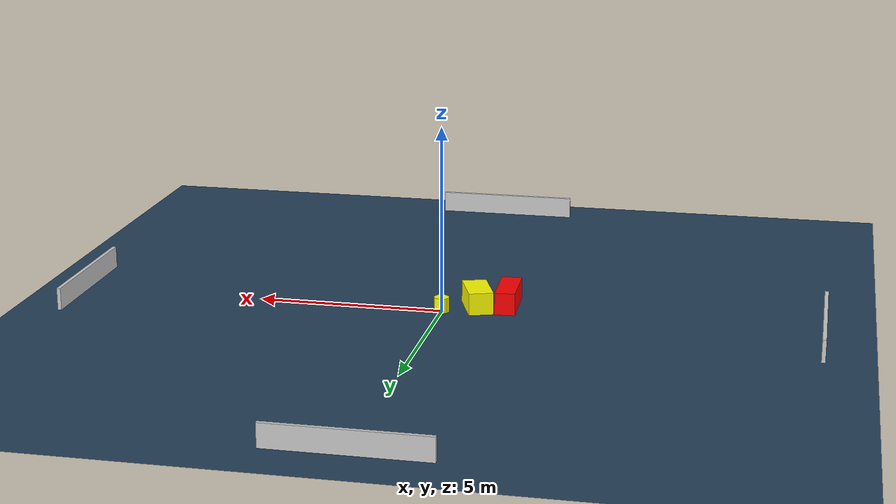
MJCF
<?xml version="1.0" ?>
<mujoco model="generated_environment">
  <option timestep="0.01" integrator="RK4" cone="elliptic"/>
  <default>
    <geom density="1"/>
  </default>
  <asset>
    <texture builtin="gradient" height="3072" name="skybox" rgb1="0.3 0.5 0.7" rgb2="0 0 0" type="skybox" width="512"/>
    <texture builtin="checker" height="300" name="groundplane" rgb1="0.2 0.3 0.4" rgb2="0.1 0.2 0.3" type="2d" width="300"/>
    <material name="groundplane" reflectance="0.2" texrepeat="5 5" texture="groundplane"/>
  </asset>
  <worldbody>
    <light dir="0 0 -1" directional="true" pos="0 0 1.5"/>
    <geom condim="3" friction="0.5 0.005 0.001" material="groundplane" name="floor" pos="0 0 0" size="0 0 0.05" type="plane"/>
    <body name="walls">
      <geom name="wall_1" condim="4" pos="-10.0 0.0 0.3" rgba="0.800000011920929 0.800000011920929 0.800000011920929 1.0" size="0.05 2.0 0.3" type="box"/>
      <geom name="wall_2" condim="4" pos="10.0 0.0 0.3" rgba="0.800000011920929 0.800000011920929 0.800000011920929 1.0" size="0.05 2.0 0.3" type="box"/>
      <geom name="wall_3" condim="4" pos="0.0 -10.0 0.3" rgba="0.800000011920929 0.800000011920929 0.800000011920929 1.0" size="2.0 0.05 0.3" type="box"/>
      <geom name="wall_4" condim="4" pos="0.0 10.0 0.3" rgba="0.800000011920929 0.800000011920929 0.800000011920929 1.0" size="2.0 0.05 0.3" type="box"/>
    </body>
    <body name="robot">
      <joint name="joint_x" type="slide" pos="0 0 0" axis="1 0 0"/>
      <joint name="joint_y" type="slide" pos="0 0 0" axis="0 1 0"/>
      <geom name="robot" type="cylinder" pos="0.0 0.0 0.2" size="0.2 0.2 0.0" mass="5.0" friction="1.0 0.005 0.0001" condim="4" rgba="1.0 1.0 0.0 1.0"/>
    </body>
    <body name="obstacle_1_movable">
      <geom name="obstacle_1_movable" condim="4" pos="-0.8798324952277055 -0.4660657704829639 0.3" euler="0 0 290.08919350748846" friction="0.0 0.005 0.001" rgba="1.0 1.0 0.0 1.0" size="0.6028824926367053 0.33172252914684464 0.3" type="box" mass="0.1"/>
      <joint type="free"/>
    </body>
    <body name="obstacle_2_static">
      <geom name="obstacle_2_static" condim="4" pos="-1.6633875272713394 -0.7554501846863936 0.3" euler="0 0 272.2466359031809" friction="0.0 0.005 0.001" rgba="1.0 0.0 0.0 1.0" size="0.7444798748798083 0.2716461087736953 0.3" type="box"/>
    </body>
  </worldbody>
  <actuator>
    <motor name="actuator_x" joint="joint_x" gear="1" ctrlrange="-1 1"/>
    <motor name="actuator_y" joint="joint_y" gear="1" ctrlrange="-1 1"/>
  </actuator>
</mujoco>
